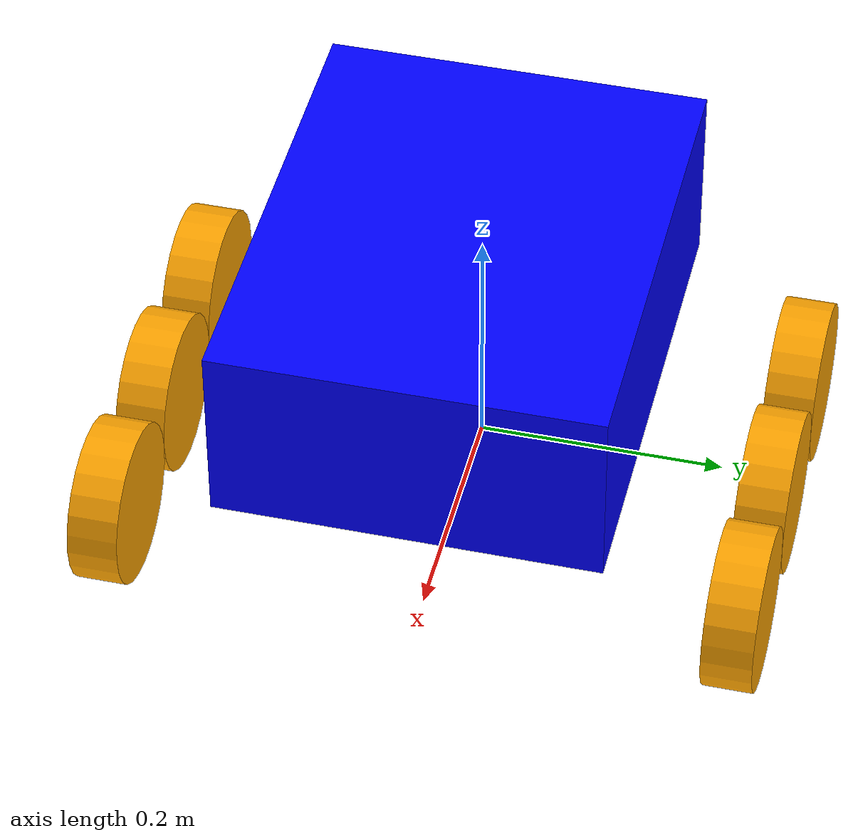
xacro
<?xml version ="1.0"?>
<robot xmlns:xacro="http://ros.org/wiki/xacro">

    <xacro:include filename="inertial_macros.xacro"/>

    <material name="white">
        <color rgba="1 1 1 1"/>
    </material>

     <material name="green">
        <color rgba="0 1 0 1"/>
    </material>

    <material name="orange">
        <color rgba="1 0.647 0 1"/>
    </material>

    <material name="blue">
        <color rgba="0 0 1 1"/>
    </material>

    <material name="black">
        <color rgba="0 0 0 1"/>
    </material>
    <!--  Base LINk  -->
    <link name="base_link">

    </link>

    <joint name="base_footprint_joint" type="fixed">
        <parent link="base_link"/>
        <child link="base_footprint"/>
        <origin xyz="0 0 0" rpy="0 0 0"/>
    </joint>
    <link name="base_footprint">
    </link>

    <joint name="chassis_joint" type="fixed">
        <parent link="base_link"/>
        <child link="chassis"/>
        <origin xyz="-0.1 0 0"/>
    </joint>
<!--   Chassis    -->
    <link name="chassis">
        <visual>
            <origin xyz="0.165 0 0.2"/>
            <geometry>
                <box size="0.381 0.3048 0.1524"/>
            </geometry>
            <material name="blue"/>
        </visual>
         <collision>
            <origin xyz="0.165 0 0.2"/>
            <geometry>
                <box size="0.381 0.3048 0.1524"/>
            </geometry>
        </collision>
        <xacro:inertial_box mass="4.5" x="0.3302" y="0.4572" z="0.3048">
            <origin xyz="0.165 0 0.1524" rpy="0 0 0"/>
        </xacro:inertial_box>
    </link>

    <gazebo reference="chassis">
      <material>Gazebo/Blue</material>
    </gazebo>
    <!-- Left tread -->

<!-- Left invisble wheel to  actually drive do not add collision-->
<joint name="left_wheel_center_joint" type="continuous">
  <parent link="base_link"/>
  <child link="left_center_wheel"/>
  <origin xyz="0.065 0.25 0.05" rpy="-${pi/2} 0 0"/>
  <axis xyz="0 0 1"/>
</joint>

<link name="left_center_wheel">
  <visual>
    <geometry>
      <cylinder radius="0.065" length="0.04"/>
    </geometry>
    <material name="orange"/>
  </visual>
  <collision>
    <geometry>
      <cylinder radius="0.065" length="0.04"/>
    </geometry>
  </collision>
  <xacro:inertial_cylinder mass="0.2" length="0.04" radius="0.065">
    <origin xyz="0 0 0" rpy="0 0 0"/>
  </xacro:inertial_cylinder>
</link>

<gazebo reference="left_center_wheel">
   <material>Gazebo/Orange</material>
</gazebo>

<joint name="left_wheel_rear_joint" type="continuous">
  <parent link="base_link"/>
  <child link="left_rear_wheel"/>
  <origin xyz="-0.065 0.25 0.05" rpy="-${pi/2} 0 0"/>
  <axis xyz="0 0 1"/>
</joint>

<link name="left_rear_wheel">
  <visual>
    <geometry>
      <cylinder radius="0.065" length="0.04"/>
    </geometry>
    <material name="orange"/>
  </visual>
  <collision>
    <geometry>
      <cylinder radius="0.065" length="0.04"/>
    </geometry>
  </collision>
  <xacro:inertial_cylinder mass="0.2" length="0.04" radius="0.065">
    <origin xyz="0 0 0" rpy="0 0 0"/>
  </xacro:inertial_cylinder>
</link>

<gazebo reference="left_rear_wheel">
   <material>Gazebo/Orange</material>
   <mu1 value="0.001"/>
   <mu2 value="0.001"/>
</gazebo>

<joint name="left_wheel_front_joint" type="continuous">
  <parent link="base_link"/>
  <child link="left_front_wheel"/>
  <origin xyz="0.195 0.25 0.05" rpy="-${pi/2} 0 0"/>
  <axis xyz="0 0 1"/>
</joint>

<link name="left_front_wheel">
  <visual>
    <geometry>
      <cylinder radius="0.065" length="0.04"/>
    </geometry>
    <material name="orange"/>
  </visual>
  <collision>
    <geometry>
      <cylinder radius="0.065" length="0.04"/>
    </geometry>
  </collision>
  <xacro:inertial_cylinder mass="0.2" length="0.04" radius="0.065">
    <origin xyz="0 0 0" rpy="0 0 0"/>
  </xacro:inertial_cylinder>
</link>

<gazebo reference="left_front_wheel">
   <material>Gazebo/Orange</material>
   <mu1 value="0.001"/>
   <mu2 value="0.001"/>
</gazebo>
<!-- Right tread -->

<!-- Right invisble wheel to  actually drive do not add collision-->

<joint name="right_wheel_center_joint" type="continuous">
  <parent link="base_link"/>
  <child link="right_center_wheel"/>
  <origin xyz="0.065 -0.25 0.05" rpy="${pi/2} 0 0"/>
  <axis xyz="0 0 -1"/>
</joint>

<link name="right_center_wheel">
  <visual>
    <geometry>
      <cylinder radius="0.065" length="0.04"/>
    </geometry>
    <material name="orange"/>
  </visual>
    <collision>
    <geometry>
      <cylinder radius="0.065" length="0.04"/>
    </geometry>
  </collision>
  <xacro:inertial_cylinder mass="0.2" length="0.04" radius="0.065">
    <origin xyz="0 0 0" rpy=" 0 0 0"/>
  </xacro:inertial_cylinder>
</link>
<gazebo reference="right_center_wheel">
   <material>Gazebo/Orange</material>
</gazebo>

<joint name="right_wheel_front_joint" type="continuous">
  <parent link="base_link"/>
  <child link="right_front_wheel"/>
  <origin xyz="0.195 -0.25 0.05" rpy="${pi/2} 0 0"/>
  <axis xyz="0 0 -1"/>
</joint>

<link name="right_front_wheel">
  <visual>
    <geometry>
      <cylinder radius="0.065" length="0.04"/>
    </geometry>
    <material name="orange"/>
  </visual>
    <collision>
    <geometry>
      <cylinder radius="0.065" length="0.04"/>
    </geometry>
  </collision>
  <xacro:inertial_cylinder mass="0.2" length="0.04" radius="0.065">
    <origin xyz="0 0 0" rpy=" 0 0 0"/>
  </xacro:inertial_cylinder>
</link>
<gazebo reference="right_front_wheel">
   <material>Gazebo/Orange</material>
   <mu1 value="0.001"/>
   <mu2 value="0.001"/>
</gazebo>

<joint name="right_wheel_rear_joint" type="continuous">
  <parent link="base_link"/>
  <child link="right_rear_wheel"/>
  <origin xyz="-0.065 -0.25 0.05" rpy="${pi/2} 0 0"/>
  <axis xyz="0 0 -1"/>
</joint>

<link name="right_rear_wheel">
  <visual>
    <geometry>
      <cylinder radius="0.065" length="0.04"/>
    </geometry>
    <material name="orange"/>
  </visual>
    <collision>
    <geometry>
      <cylinder radius="0.065" length="0.04"/>
    </geometry>
  </collision>
  <xacro:inertial_cylinder mass="0.2" length="0.04" radius="0.065">
    <origin xyz="0 0 0" rpy=" 0 0 0"/>
  </xacro:inertial_cylinder>
</link>
<gazebo reference="right_rear_wheel">
   <material>Gazebo/Orange</material>
   <mu1 value="0.001"/>
   <mu2 value="0.001"/>
</gazebo>
<!-- Right invisble wheel to  actually drive do not add collision-->

<!-- caster wheel-->

</robot>
